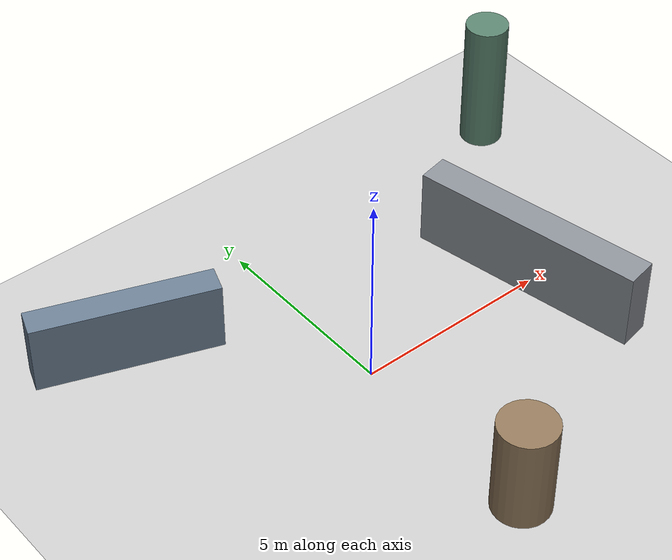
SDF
<?xml version="1.0"?>
<sdf version="1.6">
  <world name="super_light">
    <physics name="default_physics" type="ode">
      <max_step_size>0.004</max_step_size>
      <real_time_update_rate>250</real_time_update_rate>
      <real_time_factor>1.0</real_time_factor>
    </physics>

    <scene>
      <ambient>0.45 0.45 0.45 1</ambient>
      <background>0.72 0.78 0.84 1</background>
      <shadows>true</shadows>
    </scene>

    <include>
      <uri>model://ground_plane</uri>
    </include>
    <include>
      <uri>model://sun</uri>
    </include>

    <model name="box_obstacle_1">
      <static>true</static>
      <pose>5 0 1.0 0 0 0.2</pose>
      <link name="link">
        <collision name="collision"><geometry><box><size>0.8 6.0 2.0</size></box></geometry></collision>
        <visual name="visual"><geometry><box><size>0.8 6.0 2.0</size></box></geometry><material><ambient>0.55 0.57 0.60 1</ambient><diffuse>0.55 0.57 0.60 1</diffuse></material></visual>
      </link>
    </model>

    <model name="box_obstacle_2">
      <static>true</static>
      <pose>-4 4 0.9 0 0 -0.35</pose>
      <link name="link">
        <collision name="collision"><geometry><box><size>4.5 0.7 1.8</size></box></geometry></collision>
        <visual name="visual"><geometry><box><size>4.5 0.7 1.8</size></box></geometry><material><ambient>0.42 0.50 0.58 1</ambient><diffuse>0.42 0.50 0.58 1</diffuse></material></visual>
      </link>
    </model>

    <model name="cylinder_obstacle_1">
      <static>true</static>
      <pose>0 -5 1.25 0 0 0</pose>
      <link name="link">
        <collision name="collision"><geometry><cylinder><radius>0.7</radius><length>2.5</length></cylinder></geometry></collision>
        <visual name="visual"><geometry><cylinder><radius>0.7</radius><length>2.5</length></cylinder></geometry><material><ambient>0.58 0.48 0.36 1</ambient><diffuse>0.58 0.48 0.36 1</diffuse></material></visual>
      </link>
    </model>

    <model name="cylinder_obstacle_2">
      <static>true</static>
      <pose>8 5 1.75 0 0 0</pose>
      <link name="link">
        <collision name="collision"><geometry><cylinder><radius>0.55</radius><length>3.5</length></cylinder></geometry></collision>
        <visual name="visual"><geometry><cylinder><radius>0.55</radius><length>3.5</length></cylinder></geometry><material><ambient>0.36 0.52 0.44 1</ambient><diffuse>0.36 0.52 0.44 1</diffuse></material></visual>
      </link>
    </model>
  </world>
</sdf>
